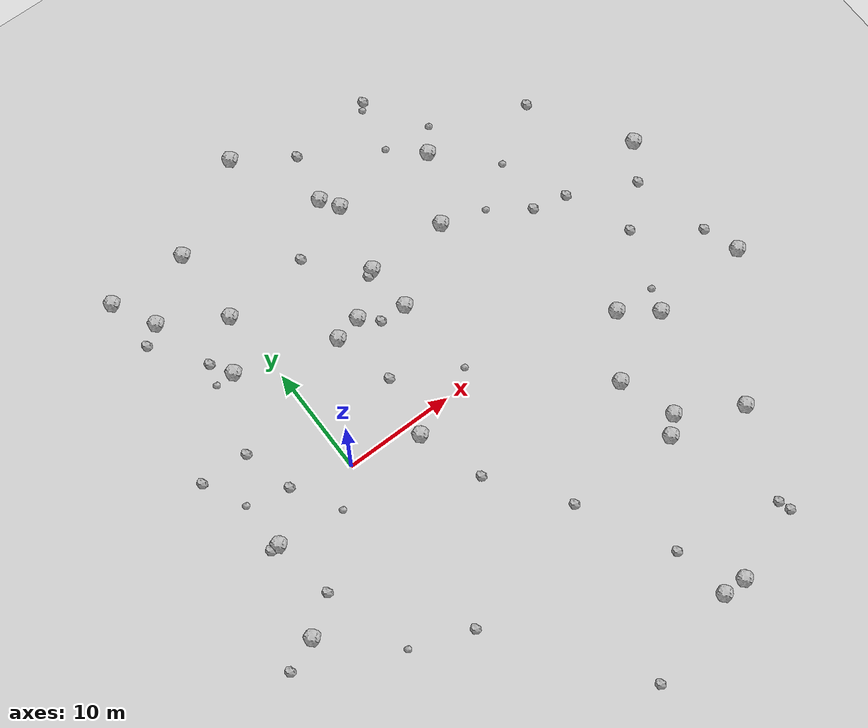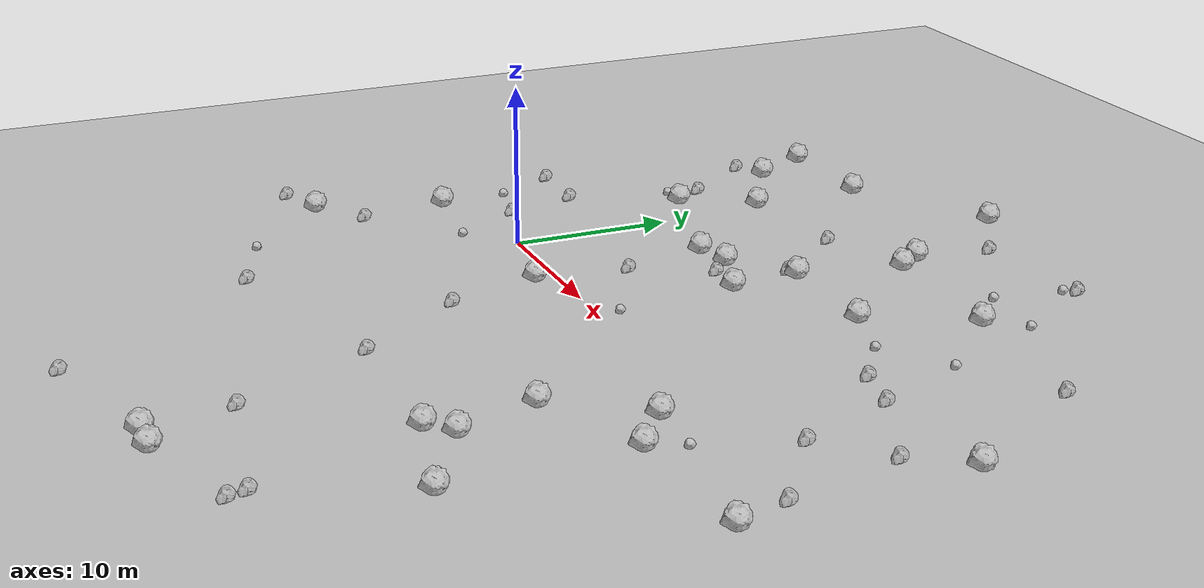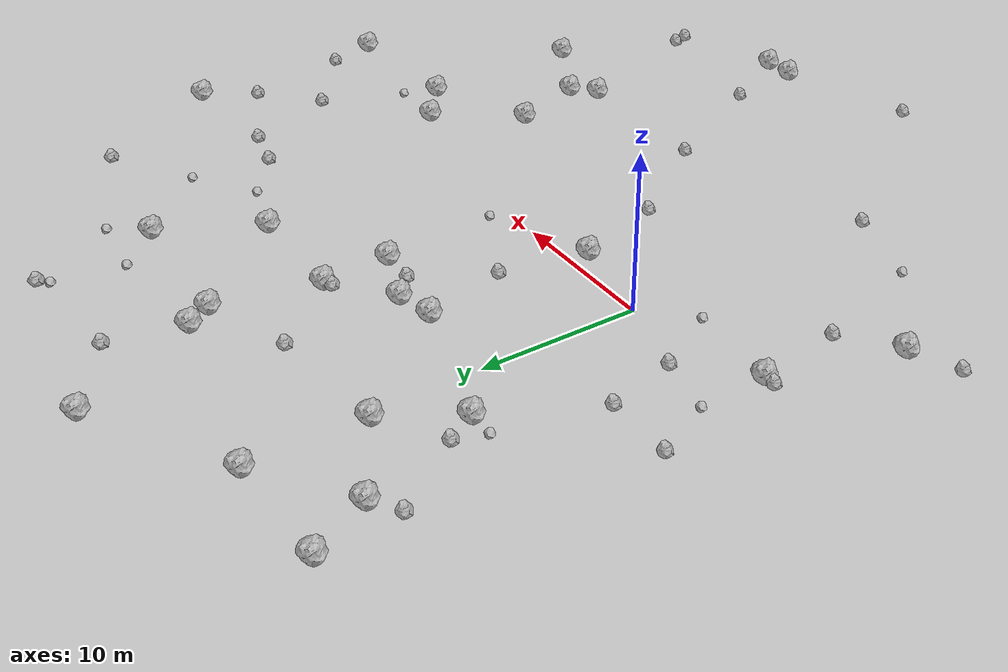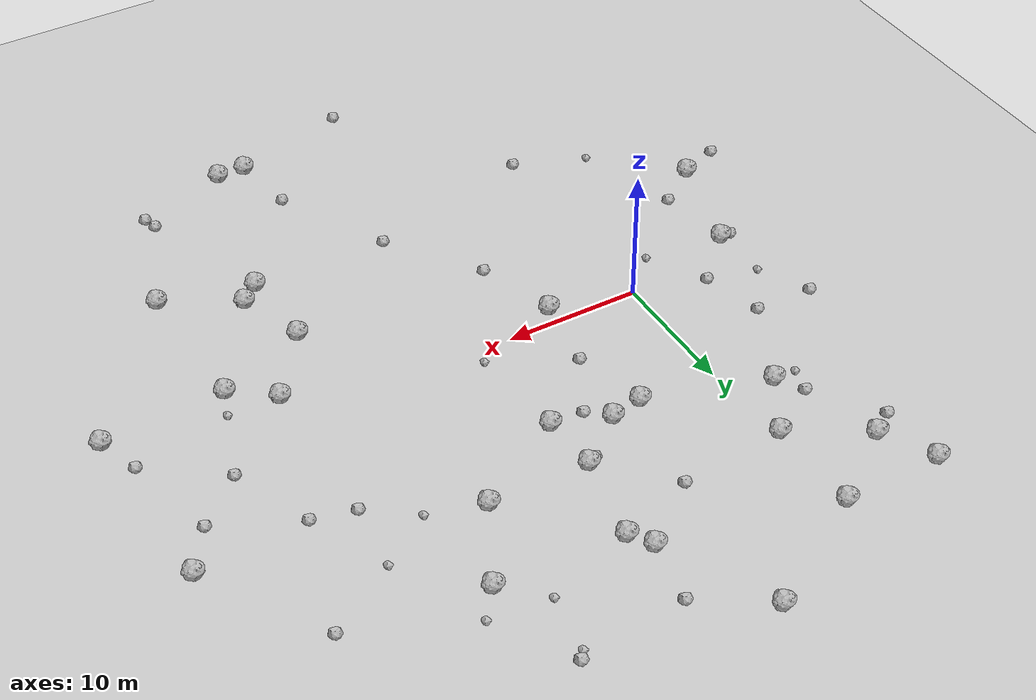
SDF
<sdf version="1.6">
 <world name="default">
  <include><uri>model://custom_ground</uri></include>
  <include><uri>model://sun</uri></include>
  <model name="rock1_0_0">
   <include><uri>model://rock1</uri><pose>24.325438476638766 -12.666199320690549 0.5 0 0 0</pose></include>
  </model>
  <model name="rock1_0_1">
   <include><uri>model://rock1</uri><pose>-5.893809356433241 20.249792027743183 0.5 0 0 0</pose></include>
  </model>
  <model name="rock1_0_2">
   <include><uri>model://rock1</uri><pose>-11.062064209260354 -9.87396268031712 0.5 0 0 0</pose></include>
  </model>
  <model name="rock1_0_3">
   <include><uri>model://rock1</uri><pose>-7.877165173493692 24.051439108281826 0.5 0 0 0</pose></include>
  </model>
  <model name="rock1_0_4">
   <include><uri>model://rock1</uri><pose>37.68089328828402 9.205226274176674 0.5 0 0 0</pose></include>
  </model>
  <model name="rock1_0_5">
   <include><uri>model://rock1</uri><pose>26.346021344524935 -2.5145571118482977 0.5 0 0 0</pose></include>
  </model>
  <model name="rock1_0_6">
   <include><uri>model://rock1</uri><pose>8.21649989373483 10.30994749182726 0.5 0 0 0</pose></include>
  </model>
  <model name="rock1_0_7">
   <include><uri>model://rock1</uri><pose>8.07006496846516 29.25697962112428 0.5 0 0 0</pose></include>
  </model>
  <model name="rock1_0_8">
   <include><uri>model://rock1</uri><pose>22.583753250336315 -7.715271131935225 0.5 0 0 0</pose></include>
  </model>
  <model name="rock1_0_9">
   <include><uri>model://rock1</uri><pose>22.433678400981314 19.277669025581652 0.5 0 0 0</pose></include>
  </model>
  <model name="rock1_0_10">
   <include><uri>model://rock1</uri><pose>-0.49667110488272925 24.188822406946294 0.5 0 0 0</pose></include>
  </model>
  <model name="rock1_0_11">
   <include><uri>model://rock1</uri><pose>-8.736563647119786 -1.9364166542888697 0.5 0 0 0</pose></include>
  </model>
  <model name="rock1_0_12">
   <include><uri>model://rock1</uri><pose>38.34962597712685 -4.304223239252597 0.5 0 0 0</pose></include>
  </model>
  <model name="rock1_0_13">
   <include><uri>model://rock1</uri><pose>-3.1293085721548337 12.604415784075762 0.5 0 0 0</pose></include>
  </model>
  <model name="rock1_0_14">
   <include><uri>model://rock1</uri><pose>13.16253624953783 19.742805017306132 0.5 0 0 0</pose></include>
  </model>
  <model name="rock1_0_15">
   <include><uri>model://rock1</uri><pose>-0.454560728156423 16.99648442970976 0.5 0 0 0</pose></include>
  </model>
  <model name="rock1_0_16">
   <include><uri>model://rock1</uri><pose>6.214675152829834 -1.310457777817362 0.5 0 0 0</pose></include>
  </model>
  <model name="rock1_0_17">
   <include><uri>model://rock1</uri><pose>17.82218228197835 -27.07736413559462 0.5 0 0 0</pose></include>
  </model>
  <model name="rock1_0_18">
   <include><uri>model://rock1</uri><pose>19.231514353455573 13.106946977044942 0.5 0 0 0</pose></include>
  </model>
  <model name="rock1_0_19">
   <include><uri>model://rock1</uri><pose>12.145363220462649 8.837828711901345 0.5 0 0 0</pose></include>
  </model>
  <model name="rock1_0_20">
   <include><uri>model://rock1</uri><pose>5.773477294142221 9.800401081477773 0.5 0 0 0</pose></include>
  </model>
  <model name="rock1_0_21">
   <include><uri>model://rock1</uri><pose>12.102914212719874 21.34705634418551 0.5 0 0 0</pose></include>
  </model>
  <model name="rock1_0_22">
   <include><uri>model://rock1</uri><pose>19.92723023798903 -27.096372045152094 0.5 0 0 0</pose></include>
  </model>
  <model name="rock1_0_23">
   <include><uri>model://rock1</uri><pose>11.884848952390385 13.226940965303676 0.5 0 0 0</pose></include>
  </model>
  <model name="rock1_0_24">
   <include><uri>model://rock1</uri><pose>29.357030674864603 -4.806862924520004 0.5 0 0 0</pose></include>
  </model>
  <model name="rock1_0_25">
   <include><uri>model://rock1</uri><pose>22.89703959085528 -14.008497871783284 0.5 0 0 0</pose></include>
  </model>
  <model name="rock1_0_26">
   <include><uri>model://rock1</uri><pose>29.677251916934118 -15.693929621102074 0.5 0 0 0</pose></include>
  </model>
  <model name="rock2_0_0">
   <include><uri>model://rock2</uri><pose>9.645066545660722 8.961004652136168 0.3 0 0 0</pose></include>
  </model>
  <model name="rock2_0_1">
   <include><uri>model://rock2</uri><pose>-5.217468325920054 1.5814991032763324 0.3 0 0 0</pose></include>
  </model>
  <model name="rock2_0_2">
   <include><uri>model://rock2</uri><pose>32.026275177198556 2.758592262892556 0.3 0 0 0</pose></include>
  </model>
  <model name="rock2_0_3">
   <include><uri>model://rock2</uri><pose>-6.424305366758336 6.098343460213556 0.3 0 0 0</pose></include>
  </model>
  <model name="rock2_0_4">
   <include><uri>model://rock2</uri><pose>29.63123955854212 8.730582005632876 0.3 0 0 0</pose></include>
  </model>
  <model name="rock2_0_5">
   <include><uri>model://rock2</uri><pose>-4.337981553960944 14.543295985822915 0.3 0 0 0</pose></include>
  </model>
  <model name="rock2_0_6">
   <include><uri>model://rock2</uri><pose>-10.830756599409842 6.204522401754637 0.3 0 0 0</pose></include>
  </model>
  <model name="rock2_0_7">
   <include><uri>model://rock2</uri><pose>-7.6715217527889195 19.113020097405055 0.3 0 0 0</pose></include>
  </model>
  <model name="rock2_0_8">
   <include><uri>model://rock2</uri><pose>-0.10734010284042483 -17.19033815688005 0.3 0 0 0</pose></include>
  </model>
  <model name="rock2_0_9">
   <include><uri>model://rock2</uri><pose>37.24685007907477 -1.0647079182749977 0.3 0 0 0</pose></include>
  </model>
  <model name="rock2_0_10">
   <include><uri>model://rock2</uri><pose>12.772120795193686 -13.783719805063548 0.3 0 0 0</pose></include>
  </model>
  <model name="rock2_0_11">
   <include><uri>model://rock2</uri><pose>8.088448252956663 -7.218155883120968 0.3 0 0 0</pose></include>
  </model>
  <model name="rock2_0_12">
   <include><uri>model://rock2</uri><pose>26.562166593687472 9.457052359187955 0.3 0 0 0</pose></include>
  </model>
  <model name="rock2_0_13">
   <include><uri>model://rock2</uri><pose>35.50685997618997 5.952027971333187 0.3 0 0 0</pose></include>
  </model>
  <model name="rock2_0_14">
   <include><uri>model://rock2</uri><pose>12.955506873889682 26.04111292460565 0.3 0 0 0</pose></include>
  </model>
  <model name="rock2_0_15">
   <include><uri>model://rock2</uri><pose>26.42040449670735 -23.765729671345554 0.3 0 0 0</pose></include>
  </model>
  <model name="rock2_0_16">
   <include><uri>model://rock2</uri><pose>32.34378709587166 17.88415663732753 0.3 0 0 0</pose></include>
  </model>
  <model name="rock2_0_17">
   <include><uri>model://rock2</uri><pose>7.4747816493819705 17.785652997047535 0.3 0 0 0</pose></include>
  </model>
  <model name="rock2_0_18">
   <include><uri>model://rock2</uri><pose>7.107785189532052 4.341748700008999 0.3 0 0 0</pose></include>
  </model>
  <model name="rock2_0_19">
   <include><uri>model://rock2</uri><pose>20.81328731999249 26.890539220576755 0.3 0 0 0</pose></include>
  </model>
  <model name="rock2_0_20">
   <include><uri>model://rock2</uri><pose>26.745741627666327 -24.856491467690333 0.3 0 0 0</pose></include>
  </model>
  <model name="rock2_0_21">
   <include><uri>model://rock2</uri><pose>-7.915189349447553 -7.533465930105734 0.3 0 0 0</pose></include>
  </model>
  <model name="rock2_0_22">
   <include><uri>model://rock2</uri><pose>-9.570171693252199 -1.9154770432301937 0.3 0 0 0</pose></include>
  </model>
  <model name="rock2_0_23">
   <include><uri>model://rock2</uri><pose>11.215254360831285 12.957706950522663 0.3 0 0 0</pose></include>
  </model>
  <model name="rock2_0_24">
   <include><uri>model://rock2</uri><pose>-14.098573012102804 -11.012612074172239 0.3 0 0 0</pose></include>
  </model>
  <model name="rock2_0_25">
   <include><uri>model://rock2</uri><pose>8.995436565034634 -29.632975803173192 0.3 0 0 0</pose></include>
  </model>
  <model name="rock2_0_26">
   <include><uri>model://rock2</uri><pose>16.998059088007587 -21.993395014825893 0.3 0 0 0</pose></include>
  </model>
  <model name="rock3_0_0">
   <include><uri>model://rock3</uri><pose>20.271931995975116 26.22855022037895 0.2 0 0 0</pose></include>
  </model>
  <model name="rock3_0_1">
   <include><uri>model://rock3</uri><pose>23.178899671987814 11.863206484446039 0.2 0 0 0</pose></include>
  </model>
  <model name="rock3_0_2">
   <include><uri>model://rock3</uri><pose>-2.8192454932723443 -2.6705484965161865 0.2 0 0 0</pose></include>
  </model>
  <model name="rock3_0_3">
   <include><uri>model://rock3</uri><pose>27.056178384845694 14.517453712017229 0.2 0 0 0</pose></include>
  </model>
  <model name="rock3_0_4">
   <include><uri>model://rock3</uri><pose>24.074464337881466 21.395803925402504 0.2 0 0 0</pose></include>
  </model>
  <model name="rock3_0_5">
   <include><uri>model://rock3</uri><pose>-9.015322952565054 2.4163148531344447 0.2 0 0 0</pose></include>
  </model>
  <model name="rock3_0_6">
   <include><uri>model://rock3</uri><pose>30.05586655170623 -2.6728539884157207 0.2 0 0 0</pose></include>
  </model>
  <model name="rock3_0_7">
   <include><uri>model://rock3</uri><pose>-5.473306718393271 -15.239721535573349 0.2 0 0 0</pose></include>
  </model>
  <model name="rock3_0_8">
   <include><uri>model://rock3</uri><pose>19.63574178334325 21.870290048151197 0.2 0 0 0</pose></include>
  </model>
  <model name="rock3_0_9">
   <include><uri>model://rock3</uri><pose>12.79886539942423 1.2653618442206813 0.2 0 0 0</pose></include>
  </model>
  <model name="rock3_0_10">
   <include><uri>model://rock3</uri><pose>-4.942047483773527 12.585931708254478 0.2 0 0 0</pose></include>
  </model>
 </world>
</sdf>
